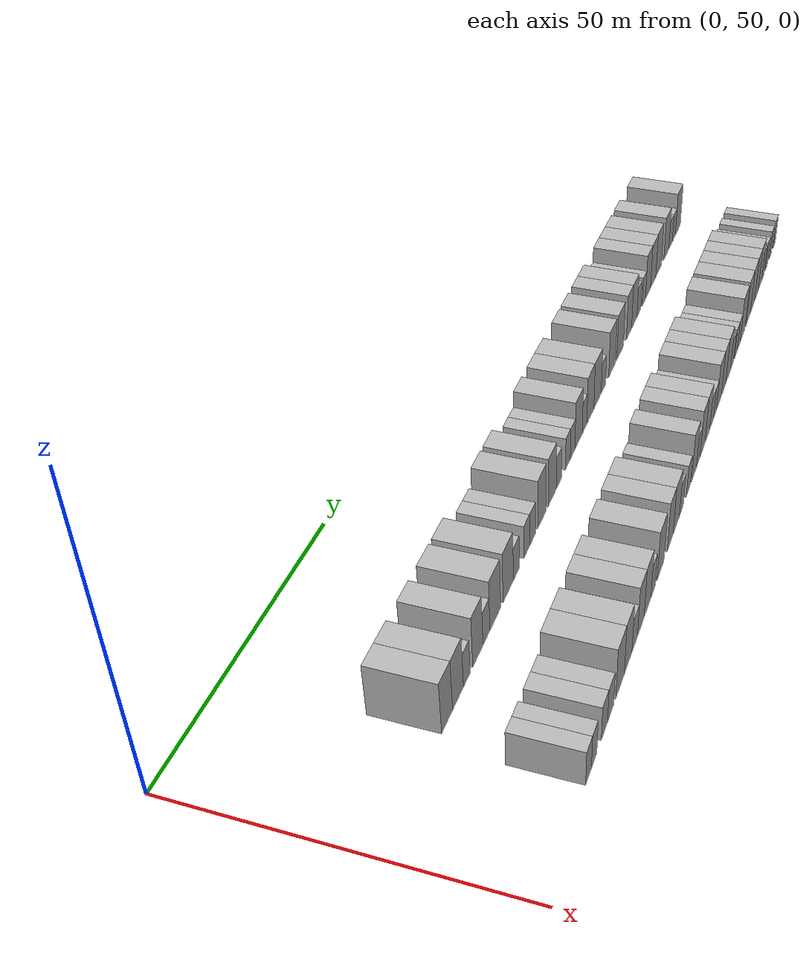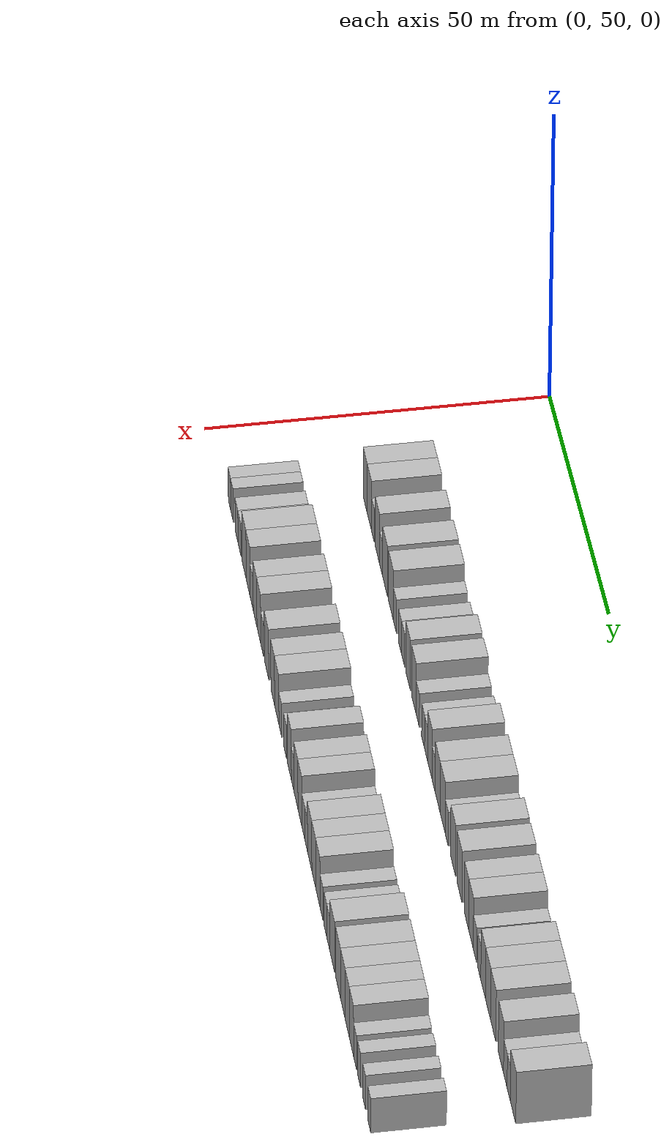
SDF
<sdf version="1.6">
 <world name="default">
  <model name="building_71">
   <static>1</static>
   <pose>25.0000 70.8489 0 0.000000 0.000000 0.000000</pose>
   <link name="link">
    <pose>0 0 4.50 0 0 0</pose>
    <collision name="collision"><geometry><box><size>10.0000 3.9220 9.0000</size></box></geometry></collision>
    <visual name="visual">
     <cast_shadows>0</cast_shadows>
     <geometry><box><size>10.0000 3.9220 9.0000</size></box></geometry>
     <material>
      <script>
       <uri>model://HANNAS_wall/materials/scripts</uri>
       <uri>model://HANNAS_wall/materials/textures</uri>
       <name>vrc/HANNAS_wall</name>
      </script>
     </material>
    </visual>
   </link>
  </model>
  <model name="building_72">
   <static>1</static>
   <pose>25.0000 74.7942 0 0.000000 0.000000 0.000000</pose>
   <link name="link">
    <pose>0 0 4.50 0 0 0</pose>
    <collision name="collision"><geometry><box><size>10.0000 3.9686 9.0000</size></box></geometry></collision>
    <visual name="visual">
     <cast_shadows>0</cast_shadows>
     <geometry><box><size>10.0000 3.9686 9.0000</size></box></geometry>
     <material>
      <script>
       <uri>model://HANNAS_wall/materials/scripts</uri>
       <uri>model://HANNAS_wall/materials/textures</uri>
       <name>vrc/HANNAS_wall</name>
      </script>
     </material>
    </visual>
   </link>
  </model>
  <model name="building_73">
   <static>1</static>
   <pose>25.0000 78.0298 0 0.000000 0.000000 0.000000</pose>
   <link name="link">
    <pose>0 0 3.00 0 0 0</pose>
    <collision name="collision"><geometry><box><size>10.0000 2.5027 6.0000</size></box></geometry></collision>
    <visual name="visual">
     <cast_shadows>0</cast_shadows>
     <geometry><box><size>10.0000 2.5027 6.0000</size></box></geometry>
     <material>
      <script>
       <uri>model://HANNAS_wall/materials/scripts</uri>
       <uri>model://HANNAS_wall/materials/textures</uri>
       <name>vrc/HANNAS_wall</name>
      </script>
     </material>
    </visual>
   </link>
  </model>
  <model name="building_74">
   <static>1</static>
   <pose>25.0000 82.2824 0 0.000000 0.000000 0.000000</pose>
   <link name="link">
    <pose>0 0 4.50 0 0 0</pose>
    <collision name="collision"><geometry><box><size>10.0000 4.0024 9.0000</size></box></geometry></collision>
    <visual name="visual">
     <cast_shadows>0</cast_shadows>
     <geometry><box><size>10.0000 4.0024 9.0000</size></box></geometry>
     <material>
      <script>
       <uri>model://HANNAS_wall/materials/scripts</uri>
       <uri>model://HANNAS_wall/materials/textures</uri>
       <name>vrc/HANNAS_wall</name>
      </script>
     </material>
    </visual>
   </link>
  </model>
  <model name="building_75">
   <static>1</static>
   <pose>25.0000 85.6878 0 0.000000 0.000000 0.000000</pose>
   <link name="link">
    <pose>0 0 3.00 0 0 0</pose>
    <collision name="collision"><geometry><box><size>10.0000 2.8086 6.0000</size></box></geometry></collision>
    <visual name="visual">
     <cast_shadows>0</cast_shadows>
     <geometry><box><size>10.0000 2.8086 6.0000</size></box></geometry>
     <material>
      <script>
       <uri>model://HANNAS_wall/materials/scripts</uri>
       <uri>model://HANNAS_wall/materials/textures</uri>
       <name>vrc/HANNAS_wall</name>
      </script>
     </material>
    </visual>
   </link>
  </model>
  <model name="building_76">
   <static>1</static>
   <pose>25.0000 89.3326 0 0.000000 0.000000 0.000000</pose>
   <link name="link">
    <pose>0 0 4.50 0 0 0</pose>
    <collision name="collision"><geometry><box><size>10.0000 4.4810 9.0000</size></box></geometry></collision>
    <visual name="visual">
     <cast_shadows>0</cast_shadows>
     <geometry><box><size>10.0000 4.4810 9.0000</size></box></geometry>
     <material>
      <script>
       <uri>model://HANNAS_wall/materials/scripts</uri>
       <uri>model://HANNAS_wall/materials/textures</uri>
       <name>vrc/HANNAS_wall</name>
      </script>
     </material>
    </visual>
   </link>
  </model>
  <model name="building_77">
   <static>1</static>
   <pose>25.0000 94.8214 0 0.000000 0.000000 0.000000</pose>
   <link name="link">
    <pose>0 0 4.50 0 0 0</pose>
    <collision name="collision"><geometry><box><size>10.0000 4.4966 9.0000</size></box></geometry></collision>
    <visual name="visual">
     <cast_shadows>0</cast_shadows>
     <geometry><box><size>10.0000 4.4966 9.0000</size></box></geometry>
     <material>
      <script>
       <uri>model://HANNAS_wall/materials/scripts</uri>
       <uri>model://HANNAS_wall/materials/textures</uri>
       <name>vrc/HANNAS_wall</name>
      </script>
     </material>
    </visual>
   </link>
  </model>
  <model name="building_78">
   <static>1</static>
   <pose>25.0000 98.4277 0 0.000000 0.000000 0.000000</pose>
   <link name="link">
    <pose>0 0 3.00 0 0 0</pose>
    <collision name="collision"><geometry><box><size>10.0000 2.7160 6.0000</size></box></geometry></collision>
    <visual name="visual">
     <cast_shadows>0</cast_shadows>
     <geometry><box><size>10.0000 2.7160 6.0000</size></box></geometry>
     <material>
      <script>
       <uri>model://HANNAS_wall/materials/scripts</uri>
       <uri>model://HANNAS_wall/materials/textures</uri>
       <name>vrc/HANNAS_wall</name>
      </script>
     </material>
    </visual>
   </link>
  </model>
  <model name="building_79">
   <static>1</static>
   <pose>25.0000 103.1300 0 0.000000 0.000000 0.000000</pose>
   <link name="link">
    <pose>0 0 3.00 0 0 0</pose>
    <collision name="collision"><geometry><box><size>10.0000 2.6886 6.0000</size></box></geometry></collision>
    <visual name="visual">
     <cast_shadows>0</cast_shadows>
     <geometry><box><size>10.0000 2.6886 6.0000</size></box></geometry>
     <material>
      <script>
       <uri>model://HANNAS_wall/materials/scripts</uri>
       <uri>model://HANNAS_wall/materials/textures</uri>
       <name>vrc/HANNAS_wall</name>
      </script>
     </material>
    </visual>
   </link>
  </model>
  <model name="building_80">
   <static>1</static>
   <pose>25.0000 105.8690 0 0.000000 0.000000 0.000000</pose>
   <link name="link">
    <pose>0 0 3.00 0 0 0</pose>
    <collision name="collision"><geometry><box><size>10.0000 2.7893 6.0000</size></box></geometry></collision>
    <visual name="visual">
     <cast_shadows>0</cast_shadows>
     <geometry><box><size>10.0000 2.7893 6.0000</size></box></geometry>
     <material>
      <script>
       <uri>model://HANNAS_wall/materials/scripts</uri>
       <uri>model://HANNAS_wall/materials/textures</uri>
       <name>vrc/HANNAS_wall</name>
      </script>
     </material>
    </visual>
   </link>
  </model>
  <model name="building_81">
   <static>1</static>
   <pose>25.0000 110.3339 0 0.000000 0.000000 0.000000</pose>
   <link name="link">
    <pose>0 0 4.50 0 0 0</pose>
    <collision name="collision"><geometry><box><size>10.0000 4.1406 9.0000</size></box></geometry></collision>
    <visual name="visual">
     <cast_shadows>0</cast_shadows>
     <geometry><box><size>10.0000 4.1406 9.0000</size></box></geometry>
     <material>
      <script>
       <uri>model://HANNAS_wall/materials/scripts</uri>
       <uri>model://HANNAS_wall/materials/textures</uri>
       <name>vrc/HANNAS_wall</name>
      </script>
     </material>
    </visual>
   </link>
  </model>
  <model name="building_82">
   <static>1</static>
   <pose>25.0000 115.4759 0 0.000000 0.000000 0.000000</pose>
   <link name="link">
    <pose>0 0 4.50 0 0 0</pose>
    <collision name="collision"><geometry><box><size>10.0000 4.1433 9.0000</size></box></geometry></collision>
    <visual name="visual">
     <cast_shadows>0</cast_shadows>
     <geometry><box><size>10.0000 4.1433 9.0000</size></box></geometry>
     <material>
      <script>
       <uri>model://HANNAS_wall/materials/scripts</uri>
       <uri>model://HANNAS_wall/materials/textures</uri>
       <name>vrc/HANNAS_wall</name>
      </script>
     </material>
    </visual>
   </link>
  </model>
  <model name="building_83">
   <static>1</static>
   <pose>25.0000 118.9860 0 0.000000 0.000000 0.000000</pose>
   <link name="link">
    <pose>0 0 3.00 0 0 0</pose>
    <collision name="collision"><geometry><box><size>10.0000 2.8769 6.0000</size></box></geometry></collision>
    <visual name="visual">
     <cast_shadows>0</cast_shadows>
     <geometry><box><size>10.0000 2.8769 6.0000</size></box></geometry>
     <material>
      <script>
       <uri>model://HANNAS_wall/materials/scripts</uri>
       <uri>model://HANNAS_wall/materials/textures</uri>
       <name>vrc/HANNAS_wall</name>
      </script>
     </material>
    </visual>
   </link>
  </model>
  <model name="building_84">
   <static>1</static>
   <pose>25.0000 123.7217 0 0.000000 0.000000 0.000000</pose>
   <link name="link">
    <pose>0 0 3.00 0 0 0</pose>
    <collision name="collision"><geometry><box><size>10.0000 2.5944 6.0000</size></box></geometry></collision>
    <visual name="visual">
     <cast_shadows>0</cast_shadows>
     <geometry><box><size>10.0000 2.5944 6.0000</size></box></geometry>
     <material>
      <script>
       <uri>model://HANNAS_wall/materials/scripts</uri>
       <uri>model://HANNAS_wall/materials/textures</uri>
       <name>vrc/HANNAS_wall</name>
      </script>
     </material>
    </visual>
   </link>
  </model>
  <model name="building_85">
   <static>1</static>
   <pose>25.0000 126.3316 0 0.000000 0.000000 0.000000</pose>
   <link name="link">
    <pose>0 0 3.00 0 0 0</pose>
    <collision name="collision"><geometry><box><size>10.0000 2.6255 6.0000</size></box></geometry></collision>
    <visual name="visual">
     <cast_shadows>0</cast_shadows>
     <geometry><box><size>10.0000 2.6255 6.0000</size></box></geometry>
     <material>
      <script>
       <uri>model://HANNAS_wall/materials/scripts</uri>
       <uri>model://HANNAS_wall/materials/textures</uri>
       <name>vrc/HANNAS_wall</name>
      </script>
     </material>
    </visual>
   </link>
  </model>
  <model name="building_86">
   <static>1</static>
   <pose>25.0000 129.7086 0 0.000000 0.000000 0.000000</pose>
   <link name="link">
    <pose>0 0 4.50 0 0 0</pose>
    <collision name="collision"><geometry><box><size>10.0000 4.1285 9.0000</size></box></geometry></collision>
    <visual name="visual">
     <cast_shadows>0</cast_shadows>
     <geometry><box><size>10.0000 4.1285 9.0000</size></box></geometry>
     <material>
      <script>
       <uri>model://HANNAS_wall/materials/scripts</uri>
       <uri>model://HANNAS_wall/materials/textures</uri>
       <name>vrc/HANNAS_wall</name>
      </script>
     </material>
    </visual>
   </link>
  </model>
  <model name="building_87">
   <static>1</static>
   <pose>25.0000 133.0878 0 0.000000 0.000000 0.000000</pose>
   <link name="link">
    <pose>0 0 3.00 0 0 0</pose>
    <collision name="collision"><geometry><box><size>10.0000 2.6299 6.0000</size></box></geometry></collision>
    <visual name="visual">
     <cast_shadows>0</cast_shadows>
     <geometry><box><size>10.0000 2.6299 6.0000</size></box></geometry>
     <material>
      <script>
       <uri>model://HANNAS_wall/materials/scripts</uri>
       <uri>model://HANNAS_wall/materials/textures</uri>
       <name>vrc/HANNAS_wall</name>
      </script>
     </material>
    </visual>
   </link>
  </model>
  <model name="building_88">
   <static>1</static>
   <pose>25.0000 136.4914 0 0.000000 0.000000 0.000000</pose>
   <link name="link">
    <pose>0 0 4.50 0 0 0</pose>
    <collision name="collision"><geometry><box><size>10.0000 4.1773 9.0000</size></box></geometry></collision>
    <visual name="visual">
     <cast_shadows>0</cast_shadows>
     <geometry><box><size>10.0000 4.1773 9.0000</size></box></geometry>
     <material>
      <script>
       <uri>model://HANNAS_wall/materials/scripts</uri>
       <uri>model://HANNAS_wall/materials/textures</uri>
       <name>vrc/HANNAS_wall</name>
      </script>
     </material>
    </visual>
   </link>
  </model>
  <model name="building_89">
   <static>1</static>
   <pose>25.0000 140.8173 0 0.000000 0.000000 0.000000</pose>
   <link name="link">
    <pose>0 0 4.50 0 0 0</pose>
    <collision name="collision"><geometry><box><size>10.0000 4.4745 9.0000</size></box></geometry></collision>
    <visual name="visual">
     <cast_shadows>0</cast_shadows>
     <geometry><box><size>10.0000 4.4745 9.0000</size></box></geometry>
     <material>
      <script>
       <uri>model://HANNAS_wall/materials/scripts</uri>
       <uri>model://HANNAS_wall/materials/textures</uri>
       <name>vrc/HANNAS_wall</name>
      </script>
     </material>
    </visual>
   </link>
  </model>
  <model name="building_90">
   <static>1</static>
   <pose>25.0000 144.4199 0 0.000000 0.000000 0.000000</pose>
   <link name="link">
    <pose>0 0 3.00 0 0 0</pose>
    <collision name="collision"><geometry><box><size>10.0000 2.7306 6.0000</size></box></geometry></collision>
    <visual name="visual">
     <cast_shadows>0</cast_shadows>
     <geometry><box><size>10.0000 2.7306 6.0000</size></box></geometry>
     <material>
      <script>
       <uri>model://HANNAS_wall/materials/scripts</uri>
       <uri>model://HANNAS_wall/materials/textures</uri>
       <name>vrc/HANNAS_wall</name>
      </script>
     </material>
    </visual>
   </link>
  </model>
  <model name="building_91">
   <static>1</static>
   <pose>25.0000 149.9409 0 0.000000 0.000000 0.000000</pose>
   <link name="link">
    <pose>0 0 4.50 0 0 0</pose>
    <collision name="collision"><geometry><box><size>10.0000 4.3115 9.0000</size></box></geometry></collision>
    <visual name="visual">
     <cast_shadows>0</cast_shadows>
     <geometry><box><size>10.0000 4.3115 9.0000</size></box></geometry>
     <material>
      <script>
       <uri>model://HANNAS_wall/materials/scripts</uri>
       <uri>model://HANNAS_wall/materials/textures</uri>
       <name>vrc/HANNAS_wall</name>
      </script>
     </material>
    </visual>
   </link>
  </model>
  <model name="building_92">
   <static>1</static>
   <pose>25.0000 155.3107 0 0.000000 0.000000 0.000000</pose>
   <link name="link">
    <pose>0 0 4.50 0 0 0</pose>
    <collision name="collision"><geometry><box><size>10.0000 4.4281 9.0000</size></box></geometry></collision>
    <visual name="visual">
     <cast_shadows>0</cast_shadows>
     <geometry><box><size>10.0000 4.4281 9.0000</size></box></geometry>
     <material>
      <script>
       <uri>model://HANNAS_wall/materials/scripts</uri>
       <uri>model://HANNAS_wall/materials/textures</uri>
       <name>vrc/HANNAS_wall</name>
      </script>
     </material>
    </visual>
   </link>
  </model>
  <model name="building_93">
   <static>1</static>
   <pose>25.0000 161.3803 0 0.000000 0.000000 0.000000</pose>
   <link name="link">
    <pose>0 0 4.50 0 0 0</pose>
    <collision name="collision"><geometry><box><size>10.0000 3.7112 9.0000</size></box></geometry></collision>
    <visual name="visual">
     <cast_shadows>0</cast_shadows>
     <geometry><box><size>10.0000 3.7112 9.0000</size></box></geometry>
     <material>
      <script>
       <uri>model://HANNAS_wall/materials/scripts</uri>
       <uri>model://HANNAS_wall/materials/textures</uri>
       <name>vrc/HANNAS_wall</name>
      </script>
     </material>
    </visual>
   </link>
  </model>
  <model name="building_94">
   <static>1</static>
   <pose>25.0000 165.1838 0 0.000000 0.000000 0.000000</pose>
   <link name="link">
    <pose>0 0 4.50 0 0 0</pose>
    <collision name="collision"><geometry><box><size>10.0000 3.8956 9.0000</size></box></geometry></collision>
    <visual name="visual">
     <cast_shadows>0</cast_shadows>
     <geometry><box><size>10.0000 3.8956 9.0000</size></box></geometry>
     <material>
      <script>
       <uri>model://HANNAS_wall/materials/scripts</uri>
       <uri>model://HANNAS_wall/materials/textures</uri>
       <name>vrc/HANNAS_wall</name>
      </script>
     </material>
    </visual>
   </link>
  </model>
  <model name="building_95">
   <static>1</static>
   <pose>25.0000 168.4774 0 0.000000 0.000000 0.000000</pose>
   <link name="link">
    <pose>0 0 3.00 0 0 0</pose>
    <collision name="collision"><geometry><box><size>10.0000 2.6917 6.0000</size></box></geometry></collision>
    <visual name="visual">
     <cast_shadows>0</cast_shadows>
     <geometry><box><size>10.0000 2.6917 6.0000</size></box></geometry>
     <material>
      <script>
       <uri>model://HANNAS_wall/materials/scripts</uri>
       <uri>model://HANNAS_wall/materials/textures</uri>
       <name>vrc/HANNAS_wall</name>
      </script>
     </material>
    </visual>
   </link>
  </model>
  <model name="building_96">
   <static>1</static>
   <pose>25.0000 172.1064 0 0.000000 0.000000 0.000000</pose>
   <link name="link">
    <pose>0 0 3.00 0 0 0</pose>
    <collision name="collision"><geometry><box><size>10.0000 2.5664 6.0000</size></box></geometry></collision>
    <visual name="visual">
     <cast_shadows>0</cast_shadows>
     <geometry><box><size>10.0000 2.5664 6.0000</size></box></geometry>
     <material>
      <script>
       <uri>model://HANNAS_wall/materials/scripts</uri>
       <uri>model://HANNAS_wall/materials/textures</uri>
       <name>vrc/HANNAS_wall</name>
      </script>
     </material>
    </visual>
   </link>
  </model>
  <model name="building_97">
   <static>1</static>
   <pose>25.0000 175.3060 0 0.000000 0.000000 0.000000</pose>
   <link name="link">
    <pose>0 0 4.50 0 0 0</pose>
    <collision name="collision"><geometry><box><size>10.0000 3.8326 9.0000</size></box></geometry></collision>
    <visual name="visual">
     <cast_shadows>0</cast_shadows>
     <geometry><box><size>10.0000 3.8326 9.0000</size></box></geometry>
     <material>
      <script>
       <uri>model://HANNAS_wall/materials/scripts</uri>
       <uri>model://HANNAS_wall/materials/textures</uri>
       <name>vrc/HANNAS_wall</name>
      </script>
     </material>
    </visual>
   </link>
  </model>
  <model name="building_98">
   <static>1</static>
   <pose>25.0000 179.3122 0 0.000000 0.000000 0.000000</pose>
   <link name="link">
    <pose>0 0 4.50 0 0 0</pose>
    <collision name="collision"><geometry><box><size>10.0000 4.1798 9.0000</size></box></geometry></collision>
    <visual name="visual">
     <cast_shadows>0</cast_shadows>
     <geometry><box><size>10.0000 4.1798 9.0000</size></box></geometry>
     <material>
      <script>
       <uri>model://HANNAS_wall/materials/scripts</uri>
       <uri>model://HANNAS_wall/materials/textures</uri>
       <name>vrc/HANNAS_wall</name>
      </script>
     </material>
    </visual>
   </link>
  </model>
  <model name="building_99">
   <static>1</static>
   <pose>25.0000 183.6263 0 0.000000 0.000000 0.000000</pose>
   <link name="link">
    <pose>0 0 4.50 0 0 0</pose>
    <collision name="collision"><geometry><box><size>10.0000 4.4484 9.0000</size></box></geometry></collision>
    <visual name="visual">
     <cast_shadows>0</cast_shadows>
     <geometry><box><size>10.0000 4.4484 9.0000</size></box></geometry>
     <material>
      <script>
       <uri>model://HANNAS_wall/materials/scripts</uri>
       <uri>model://HANNAS_wall/materials/textures</uri>
       <name>vrc/HANNAS_wall</name>
      </script>
     </material>
    </visual>
   </link>
  </model>
  <model name="building_100">
   <static>1</static>
   <pose>25.0000 189.9874 0 0.000000 0.000000 0.000000</pose>
   <link name="link">
    <pose>0 0 4.50 0 0 0</pose>
    <collision name="collision"><geometry><box><size>10.0000 4.2738 9.0000</size></box></geometry></collision>
    <visual name="visual">
     <cast_shadows>0</cast_shadows>
     <geometry><box><size>10.0000 4.2738 9.0000</size></box></geometry>
     <material>
      <script>
       <uri>model://HANNAS_wall/materials/scripts</uri>
       <uri>model://HANNAS_wall/materials/textures</uri>
       <name>vrc/HANNAS_wall</name>
      </script>
     </material>
    </visual>
   </link>
  </model>
  <model name="building_101">
   <static>1</static>
   <pose>25.0000 193.5813 0 0.000000 0.000000 0.000000</pose>
   <link name="link">
    <pose>0 0 3.00 0 0 0</pose>
    <collision name="collision"><geometry><box><size>10.0000 2.9140 6.0000</size></box></geometry></collision>
    <visual name="visual">
     <cast_shadows>0</cast_shadows>
     <geometry><box><size>10.0000 2.9140 6.0000</size></box></geometry>
     <material>
      <script>
       <uri>model://HANNAS_wall/materials/scripts</uri>
       <uri>model://HANNAS_wall/materials/textures</uri>
       <name>vrc/HANNAS_wall</name>
      </script>
     </material>
    </visual>
   </link>
  </model>
  <model name="building_102">
   <static>1</static>
   <pose>25.0000 196.3520 0 0.000000 0.000000 0.000000</pose>
   <link name="link">
    <pose>0 0 3.00 0 0 0</pose>
    <collision name="collision"><geometry><box><size>10.0000 2.6275 6.0000</size></box></geometry></collision>
    <visual name="visual">
     <cast_shadows>0</cast_shadows>
     <geometry><box><size>10.0000 2.6275 6.0000</size></box></geometry>
     <material>
      <script>
       <uri>model://HANNAS_wall/materials/scripts</uri>
       <uri>model://HANNAS_wall/materials/textures</uri>
       <name>vrc/HANNAS_wall</name>
      </script>
     </material>
    </visual>
   </link>
  </model>
  <model name="building_103">
   <static>1</static>
   <pose>25.0000 199.8853 0 0.000000 0.000000 0.000000</pose>
   <link name="link">
    <pose>0 0 4.50 0 0 0</pose>
    <collision name="collision"><geometry><box><size>10.0000 4.4392 9.0000</size></box></geometry></collision>
    <visual name="visual">
     <cast_shadows>0</cast_shadows>
     <geometry><box><size>10.0000 4.4392 9.0000</size></box></geometry>
     <material>
      <script>
       <uri>model://HANNAS_wall/materials/scripts</uri>
       <uri>model://HANNAS_wall/materials/textures</uri>
       <name>vrc/HANNAS_wall</name>
      </script>
     </material>
    </visual>
   </link>
  </model>
  <model name="building_172">
   <static>1</static>
   <pose>44.0000 68.0549 0 0.000000 0.000000 0.000000</pose>
   <link name="link">
    <pose>0 0 3.00 0 0 0</pose>
    <collision name="collision"><geometry><box><size>10.0000 2.5602 6.0000</size></box></geometry></collision>
    <visual name="visual">
     <cast_shadows>0</cast_shadows>
     <geometry><box><size>10.0000 2.5602 6.0000</size></box></geometry>
     <material>
      <script>
       <uri>model://HANNAS_wall/materials/scripts</uri>
       <uri>model://HANNAS_wall/materials/textures</uri>
       <name>vrc/HANNAS_wall</name>
      </script>
     </material>
    </visual>
   </link>
  </model>
  <model name="building_173">
   <static>1</static>
   <pose>44.0000 70.5600 0 0.000000 0.000000 0.000000</pose>
   <link name="link">
    <pose>0 0 3.00 0 0 0</pose>
    <collision name="collision"><geometry><box><size>10.0000 2.4499 6.0000</size></box></geometry></collision>
    <visual name="visual">
     <cast_shadows>0</cast_shadows>
     <geometry><box><size>10.0000 2.4499 6.0000</size></box></geometry>
     <material>
      <script>
       <uri>model://HANNAS_wall/materials/scripts</uri>
       <uri>model://HANNAS_wall/materials/textures</uri>
       <name>vrc/HANNAS_wall</name>
      </script>
     </material>
    </visual>
   </link>
  </model>
  <model name="building_174">
   <static>1</static>
   <pose>44.0000 75.2545 0 0.000000 0.000000 0.000000</pose>
   <link name="link">
    <pose>0 0 3.00 0 0 0</pose>
    <collision name="collision"><geometry><box><size>10.0000 2.9391 6.0000</size></box></geometry></collision>
    <visual name="visual">
     <cast_shadows>0</cast_shadows>
     <geometry><box><size>10.0000 2.9391 6.0000</size></box></geometry>
     <material>
      <script>
       <uri>model://HANNAS_wall/materials/scripts</uri>
       <uri>model://HANNAS_wall/materials/textures</uri>
       <name>vrc/HANNAS_wall</name>
      </script>
     </material>
    </visual>
   </link>
  </model>
  <model name="building_175">
   <static>1</static>
   <pose>44.0000 78.2024 0 0.000000 0.000000 0.000000</pose>
   <link name="link">
    <pose>0 0 3.00 0 0 0</pose>
    <collision name="collision"><geometry><box><size>10.0000 2.9567 6.0000</size></box></geometry></collision>
    <visual name="visual">
     <cast_shadows>0</cast_shadows>
     <geometry><box><size>10.0000 2.9567 6.0000</size></box></geometry>
     <material>
      <script>
       <uri>model://HANNAS_wall/materials/scripts</uri>
       <uri>model://HANNAS_wall/materials/textures</uri>
       <name>vrc/HANNAS_wall</name>
      </script>
     </material>
    </visual>
   </link>
  </model>
  <model name="building_176">
   <static>1</static>
   <pose>44.0000 82.8289 0 0.000000 0.000000 0.000000</pose>
   <link name="link">
    <pose>0 0 4.50 0 0 0</pose>
    <collision name="collision"><geometry><box><size>10.0000 4.2963 9.0000</size></box></geometry></collision>
    <visual name="visual">
     <cast_shadows>0</cast_shadows>
     <geometry><box><size>10.0000 4.2963 9.0000</size></box></geometry>
     <material>
      <script>
       <uri>model://HANNAS_wall/materials/scripts</uri>
       <uri>model://HANNAS_wall/materials/textures</uri>
       <name>vrc/HANNAS_wall</name>
      </script>
     </material>
    </visual>
   </link>
  </model>
  <model name="building_177">
   <static>1</static>
   <pose>44.0000 86.9494 0 0.000000 0.000000 0.000000</pose>
   <link name="link">
    <pose>0 0 4.50 0 0 0</pose>
    <collision name="collision"><geometry><box><size>10.0000 3.9448 9.0000</size></box></geometry></collision>
    <visual name="visual">
     <cast_shadows>0</cast_shadows>
     <geometry><box><size>10.0000 3.9448 9.0000</size></box></geometry>
     <material>
      <script>
       <uri>model://HANNAS_wall/materials/scripts</uri>
       <uri>model://HANNAS_wall/materials/textures</uri>
       <name>vrc/HANNAS_wall</name>
      </script>
     </material>
    </visual>
   </link>
  </model>
  <model name="building_178">
   <static>1</static>
   <pose>44.0000 90.4048 0 0.000000 0.000000 0.000000</pose>
   <link name="link">
    <pose>0 0 3.00 0 0 0</pose>
    <collision name="collision"><geometry><box><size>10.0000 2.9660 6.0000</size></box></geometry></collision>
    <visual name="visual">
     <cast_shadows>0</cast_shadows>
     <geometry><box><size>10.0000 2.9660 6.0000</size></box></geometry>
     <material>
      <script>
       <uri>model://HANNAS_wall/materials/scripts</uri>
       <uri>model://HANNAS_wall/materials/textures</uri>
       <name>vrc/HANNAS_wall</name>
      </script>
     </material>
    </visual>
   </link>
  </model>
  <model name="building_179">
   <static>1</static>
   <pose>44.0000 93.7168 0 0.000000 0.000000 0.000000</pose>
   <link name="link">
    <pose>0 0 4.50 0 0 0</pose>
    <collision name="collision"><geometry><box><size>10.0000 3.6580 9.0000</size></box></geometry></collision>
    <visual name="visual">
     <cast_shadows>0</cast_shadows>
     <geometry><box><size>10.0000 3.6580 9.0000</size></box></geometry>
     <material>
      <script>
       <uri>model://HANNAS_wall/materials/scripts</uri>
       <uri>model://HANNAS_wall/materials/textures</uri>
       <name>vrc/HANNAS_wall</name>
      </script>
     </material>
    </visual>
   </link>
  </model>
  <model name="building_180">
   <static>1</static>
   <pose>44.0000 97.4952 0 0.000000 0.000000 0.000000</pose>
   <link name="link">
    <pose>0 0 4.50 0 0 0</pose>
    <collision name="collision"><geometry><box><size>10.0000 3.8988 9.0000</size></box></geometry></collision>
    <visual name="visual">
     <cast_shadows>0</cast_shadows>
     <geometry><box><size>10.0000 3.8988 9.0000</size></box></geometry>
     <material>
      <script>
       <uri>model://HANNAS_wall/materials/scripts</uri>
       <uri>model://HANNAS_wall/materials/textures</uri>
       <name>vrc/HANNAS_wall</name>
      </script>
     </material>
    </visual>
   </link>
  </model>
  <model name="building_181">
   <static>1</static>
   <pose>44.0000 100.7286 0 0.000000 0.000000 0.000000</pose>
   <link name="link">
    <pose>0 0 3.00 0 0 0</pose>
    <collision name="collision"><geometry><box><size>10.0000 2.5680 6.0000</size></box></geometry></collision>
    <visual name="visual">
     <cast_shadows>0</cast_shadows>
     <geometry><box><size>10.0000 2.5680 6.0000</size></box></geometry>
     <material>
      <script>
       <uri>model://HANNAS_wall/materials/scripts</uri>
       <uri>model://HANNAS_wall/materials/textures</uri>
       <name>vrc/HANNAS_wall</name>
      </script>
     </material>
    </visual>
   </link>
  </model>
  <model name="building_182">
   <static>1</static>
   <pose>44.0000 105.1125 0 0.000000 0.000000 0.000000</pose>
   <link name="link">
    <pose>0 0 4.50 0 0 0</pose>
    <collision name="collision"><geometry><box><size>10.0000 4.1998 9.0000</size></box></geometry></collision>
    <visual name="visual">
     <cast_shadows>0</cast_shadows>
     <geometry><box><size>10.0000 4.1998 9.0000</size></box></geometry>
     <material>
      <script>
       <uri>model://HANNAS_wall/materials/scripts</uri>
       <uri>model://HANNAS_wall/materials/textures</uri>
       <name>vrc/HANNAS_wall</name>
      </script>
     </material>
    </visual>
   </link>
  </model>
  <model name="building_183">
   <static>1</static>
   <pose>44.0000 111.0483 0 0.000000 0.000000 0.000000</pose>
   <link name="link">
    <pose>0 0 4.50 0 0 0</pose>
    <collision name="collision"><geometry><box><size>10.0000 3.6718 9.0000</size></box></geometry></collision>
    <visual name="visual">
     <cast_shadows>0</cast_shadows>
     <geometry><box><size>10.0000 3.6718 9.0000</size></box></geometry>
     <material>
      <script>
       <uri>model://HANNAS_wall/materials/scripts</uri>
       <uri>model://HANNAS_wall/materials/textures</uri>
       <name>vrc/HANNAS_wall</name>
      </script>
     </material>
    </visual>
   </link>
  </model>
  <model name="building_184">
   <static>1</static>
   <pose>44.0000 114.9545 0 0.000000 0.000000 0.000000</pose>
   <link name="link">
    <pose>0 0 4.50 0 0 0</pose>
    <collision name="collision"><geometry><box><size>10.0000 4.1406 9.0000</size></box></geometry></collision>
    <visual name="visual">
     <cast_shadows>0</cast_shadows>
     <geometry><box><size>10.0000 4.1406 9.0000</size></box></geometry>
     <material>
      <script>
       <uri>model://HANNAS_wall/materials/scripts</uri>
       <uri>model://HANNAS_wall/materials/textures</uri>
       <name>vrc/HANNAS_wall</name>
      </script>
     </material>
    </visual>
   </link>
  </model>
  <model name="building_185">
   <static>1</static>
   <pose>44.0000 118.3417 0 0.000000 0.000000 0.000000</pose>
   <link name="link">
    <pose>0 0 3.00 0 0 0</pose>
    <collision name="collision"><geometry><box><size>10.0000 2.6338 6.0000</size></box></geometry></collision>
    <visual name="visual">
     <cast_shadows>0</cast_shadows>
     <geometry><box><size>10.0000 2.6338 6.0000</size></box></geometry>
     <material>
      <script>
       <uri>model://HANNAS_wall/materials/scripts</uri>
       <uri>model://HANNAS_wall/materials/textures</uri>
       <name>vrc/HANNAS_wall</name>
      </script>
     </material>
    </visual>
   </link>
  </model>
  <model name="building_186">
   <static>1</static>
   <pose>44.0000 122.9760 0 0.000000 0.000000 0.000000</pose>
   <link name="link">
    <pose>0 0 3.00 0 0 0</pose>
    <collision name="collision"><geometry><box><size>10.0000 2.6349 6.0000</size></box></geometry></collision>
    <visual name="visual">
     <cast_shadows>0</cast_shadows>
     <geometry><box><size>10.0000 2.6349 6.0000</size></box></geometry>
     <material>
      <script>
       <uri>model://HANNAS_wall/materials/scripts</uri>
       <uri>model://HANNAS_wall/materials/textures</uri>
       <name>vrc/HANNAS_wall</name>
      </script>
     </material>
    </visual>
   </link>
  </model>
  <model name="building_187">
   <static>1</static>
   <pose>44.0000 127.0959 0 0.000000 0.000000 0.000000</pose>
   <link name="link">
    <pose>0 0 4.50 0 0 0</pose>
    <collision name="collision"><geometry><box><size>10.0000 3.6048 9.0000</size></box></geometry></collision>
    <visual name="visual">
     <cast_shadows>0</cast_shadows>
     <geometry><box><size>10.0000 3.6048 9.0000</size></box></geometry>
     <material>
      <script>
       <uri>model://HANNAS_wall/materials/scripts</uri>
       <uri>model://HANNAS_wall/materials/textures</uri>
       <name>vrc/HANNAS_wall</name>
      </script>
     </material>
    </visual>
   </link>
  </model>
  <model name="building_188">
   <static>1</static>
   <pose>44.0000 130.1757 0 0.000000 0.000000 0.000000</pose>
   <link name="link">
    <pose>0 0 3.00 0 0 0</pose>
    <collision name="collision"><geometry><box><size>10.0000 2.5547 6.0000</size></box></geometry></collision>
    <visual name="visual">
     <cast_shadows>0</cast_shadows>
     <geometry><box><size>10.0000 2.5547 6.0000</size></box></geometry>
     <material>
      <script>
       <uri>model://HANNAS_wall/materials/scripts</uri>
       <uri>model://HANNAS_wall/materials/textures</uri>
       <name>vrc/HANNAS_wall</name>
      </script>
     </material>
    </visual>
   </link>
  </model>
  <model name="building_189">
   <static>1</static>
   <pose>44.0000 133.3133 0 0.000000 0.000000 0.000000</pose>
   <link name="link">
    <pose>0 0 4.50 0 0 0</pose>
    <collision name="collision"><geometry><box><size>10.0000 3.7205 9.0000</size></box></geometry></collision>
    <visual name="visual">
     <cast_shadows>0</cast_shadows>
     <geometry><box><size>10.0000 3.7205 9.0000</size></box></geometry>
     <material>
      <script>
       <uri>model://HANNAS_wall/materials/scripts</uri>
       <uri>model://HANNAS_wall/materials/textures</uri>
       <name>vrc/HANNAS_wall</name>
      </script>
     </material>
    </visual>
   </link>
  </model>
  <model name="building_190">
   <static>1</static>
   <pose>44.0000 137.0018 0 0.000000 0.000000 0.000000</pose>
   <link name="link">
    <pose>0 0 4.50 0 0 0</pose>
    <collision name="collision"><geometry><box><size>10.0000 3.6566 9.0000</size></box></geometry></collision>
    <visual name="visual">
     <cast_shadows>0</cast_shadows>
     <geometry><box><size>10.0000 3.6566 9.0000</size></box></geometry>
     <material>
      <script>
       <uri>model://HANNAS_wall/materials/scripts</uri>
       <uri>model://HANNAS_wall/materials/textures</uri>
       <name>vrc/HANNAS_wall</name>
      </script>
     </material>
    </visual>
   </link>
  </model>
  <model name="building_191">
   <static>1</static>
   <pose>44.0000 140.2849 0 0.000000 0.000000 0.000000</pose>
   <link name="link">
    <pose>0 0 3.00 0 0 0</pose>
    <collision name="collision"><geometry><box><size>10.0000 2.9095 6.0000</size></box></geometry></collision>
    <visual name="visual">
     <cast_shadows>0</cast_shadows>
     <geometry><box><size>10.0000 2.9095 6.0000</size></box></geometry>
     <material>
      <script>
       <uri>model://HANNAS_wall/materials/scripts</uri>
       <uri>model://HANNAS_wall/materials/textures</uri>
       <name>vrc/HANNAS_wall</name>
      </script>
     </material>
    </visual>
   </link>
  </model>
  <model name="building_192">
   <static>1</static>
   <pose>44.0000 142.9453 0 0.000000 0.000000 0.000000</pose>
   <link name="link">
    <pose>0 0 3.00 0 0 0</pose>
    <collision name="collision"><geometry><box><size>10.0000 2.4113 6.0000</size></box></geometry></collision>
    <visual name="visual">
     <cast_shadows>0</cast_shadows>
     <geometry><box><size>10.0000 2.4113 6.0000</size></box></geometry>
     <material>
      <script>
       <uri>model://HANNAS_wall/materials/scripts</uri>
       <uri>model://HANNAS_wall/materials/textures</uri>
       <name>vrc/HANNAS_wall</name>
      </script>
     </material>
    </visual>
   </link>
  </model>
  <model name="building_193">
   <static>1</static>
   <pose>44.0000 146.1374 0 0.000000 0.000000 0.000000</pose>
   <link name="link">
    <pose>0 0 4.50 0 0 0</pose>
    <collision name="collision"><geometry><box><size>10.0000 3.9729 9.0000</size></box></geometry></collision>
    <visual name="visual">
     <cast_shadows>0</cast_shadows>
     <geometry><box><size>10.0000 3.9729 9.0000</size></box></geometry>
     <material>
      <script>
       <uri>model://HANNAS_wall/materials/scripts</uri>
       <uri>model://HANNAS_wall/materials/textures</uri>
       <name>vrc/HANNAS_wall</name>
      </script>
     </material>
    </visual>
   </link>
  </model>
  <model name="building_194">
   <static>1</static>
   <pose>44.0000 149.9279 0 0.000000 0.000000 0.000000</pose>
   <link name="link">
    <pose>0 0 4.50 0 0 0</pose>
    <collision name="collision"><geometry><box><size>10.0000 3.6079 9.0000</size></box></geometry></collision>
    <visual name="visual">
     <cast_shadows>0</cast_shadows>
     <geometry><box><size>10.0000 3.6079 9.0000</size></box></geometry>
     <material>
      <script>
       <uri>model://HANNAS_wall/materials/scripts</uri>
       <uri>model://HANNAS_wall/materials/textures</uri>
       <name>vrc/HANNAS_wall</name>
      </script>
     </material>
    </visual>
   </link>
  </model>
  <model name="building_195">
   <static>1</static>
   <pose>44.0000 153.7305 0 0.000000 0.000000 0.000000</pose>
   <link name="link">
    <pose>0 0 4.50 0 0 0</pose>
    <collision name="collision"><geometry><box><size>10.0000 3.9974 9.0000</size></box></geometry></collision>
    <visual name="visual">
     <cast_shadows>0</cast_shadows>
     <geometry><box><size>10.0000 3.9974 9.0000</size></box></geometry>
     <material>
      <script>
       <uri>model://HANNAS_wall/materials/scripts</uri>
       <uri>model://HANNAS_wall/materials/textures</uri>
       <name>vrc/HANNAS_wall</name>
      </script>
     </material>
    </visual>
   </link>
  </model>
  <model name="building_196">
   <static>1</static>
   <pose>44.0000 157.0918 0 0.000000 0.000000 0.000000</pose>
   <link name="link">
    <pose>0 0 3.00 0 0 0</pose>
    <collision name="collision"><geometry><box><size>10.0000 2.7251 6.0000</size></box></geometry></collision>
    <visual name="visual">
     <cast_shadows>0</cast_shadows>
     <geometry><box><size>10.0000 2.7251 6.0000</size></box></geometry>
     <material>
      <script>
       <uri>model://HANNAS_wall/materials/scripts</uri>
       <uri>model://HANNAS_wall/materials/textures</uri>
       <name>vrc/HANNAS_wall</name>
      </script>
     </material>
    </visual>
   </link>
  </model>
  <model name="building_197">
   <static>1</static>
   <pose>44.0000 160.6886 0 0.000000 0.000000 0.000000</pose>
   <link name="link">
    <pose>0 0 3.00 0 0 0</pose>
    <collision name="collision"><geometry><box><size>10.0000 2.4683 6.0000</size></box></geometry></collision>
    <visual name="visual">
     <cast_shadows>0</cast_shadows>
     <geometry><box><size>10.0000 2.4683 6.0000</size></box></geometry>
     <material>
      <script>
       <uri>model://HANNAS_wall/materials/scripts</uri>
       <uri>model://HANNAS_wall/materials/textures</uri>
       <name>vrc/HANNAS_wall</name>
      </script>
     </material>
    </visual>
   </link>
  </model>
  <model name="building_198">
   <static>1</static>
   <pose>44.0000 163.2492 0 0.000000 0.000000 0.000000</pose>
   <link name="link">
    <pose>0 0 3.00 0 0 0</pose>
    <collision name="collision"><geometry><box><size>10.0000 2.6529 6.0000</size></box></geometry></collision>
    <visual name="visual">
     <cast_shadows>0</cast_shadows>
     <geometry><box><size>10.0000 2.6529 6.0000</size></box></geometry>
     <material>
      <script>
       <uri>model://HANNAS_wall/materials/scripts</uri>
       <uri>model://HANNAS_wall/materials/textures</uri>
       <name>vrc/HANNAS_wall</name>
      </script>
     </material>
    </visual>
   </link>
  </model>
  <model name="building_199">
   <static>1</static>
   <pose>44.0000 166.8255 0 0.000000 0.000000 0.000000</pose>
   <link name="link">
    <pose>0 0 4.50 0 0 0</pose>
    <collision name="collision"><geometry><box><size>10.0000 4.4999 9.0000</size></box></geometry></collision>
    <visual name="visual">
     <cast_shadows>0</cast_shadows>
     <geometry><box><size>10.0000 4.4999 9.0000</size></box></geometry>
     <material>
      <script>
       <uri>model://HANNAS_wall/materials/scripts</uri>
       <uri>model://HANNAS_wall/materials/textures</uri>
       <name>vrc/HANNAS_wall</name>
      </script>
     </material>
    </visual>
   </link>
  </model>
  <model name="building_200">
   <static>1</static>
   <pose>44.0000 172.2360 0 0.000000 0.000000 0.000000</pose>
   <link name="link">
    <pose>0 0 4.50 0 0 0</pose>
    <collision name="collision"><geometry><box><size>10.0000 4.3210 9.0000</size></box></geometry></collision>
    <visual name="visual">
     <cast_shadows>0</cast_shadows>
     <geometry><box><size>10.0000 4.3210 9.0000</size></box></geometry>
     <material>
      <script>
       <uri>model://HANNAS_wall/materials/scripts</uri>
       <uri>model://HANNAS_wall/materials/textures</uri>
       <name>vrc/HANNAS_wall</name>
      </script>
     </material>
    </visual>
   </link>
  </model>
  <model name="building_201">
   <static>1</static>
   <pose>44.0000 176.4221 0 0.000000 0.000000 0.000000</pose>
   <link name="link">
    <pose>0 0 4.50 0 0 0</pose>
    <collision name="collision"><geometry><box><size>10.0000 4.0513 9.0000</size></box></geometry></collision>
    <visual name="visual">
     <cast_shadows>0</cast_shadows>
     <geometry><box><size>10.0000 4.0513 9.0000</size></box></geometry>
     <material>
      <script>
       <uri>model://HANNAS_wall/materials/scripts</uri>
       <uri>model://HANNAS_wall/materials/textures</uri>
       <name>vrc/HANNAS_wall</name>
      </script>
     </material>
    </visual>
   </link>
  </model>
  <model name="building_202">
   <static>1</static>
   <pose>44.0000 180.2943 0 0.000000 0.000000 0.000000</pose>
   <link name="link">
    <pose>0 0 4.50 0 0 0</pose>
    <collision name="collision"><geometry><box><size>10.0000 3.6931 9.0000</size></box></geometry></collision>
    <visual name="visual">
     <cast_shadows>0</cast_shadows>
     <geometry><box><size>10.0000 3.6931 9.0000</size></box></geometry>
     <material>
      <script>
       <uri>model://HANNAS_wall/materials/scripts</uri>
       <uri>model://HANNAS_wall/materials/textures</uri>
       <name>vrc/HANNAS_wall</name>
      </script>
     </material>
    </visual>
   </link>
  </model>
  <model name="building_203">
   <static>1</static>
   <pose>44.0000 184.0589 0 0.000000 0.000000 0.000000</pose>
   <link name="link">
    <pose>0 0 4.50 0 0 0</pose>
    <collision name="collision"><geometry><box><size>10.0000 3.8360 9.0000</size></box></geometry></collision>
    <visual name="visual">
     <cast_shadows>0</cast_shadows>
     <geometry><box><size>10.0000 3.8360 9.0000</size></box></geometry>
     <material>
      <script>
       <uri>model://HANNAS_wall/materials/scripts</uri>
       <uri>model://HANNAS_wall/materials/textures</uri>
       <name>vrc/HANNAS_wall</name>
      </script>
     </material>
    </visual>
   </link>
  </model>
  <model name="building_204">
   <static>1</static>
   <pose>44.0000 187.2898 0 0.000000 0.000000 0.000000</pose>
   <link name="link">
    <pose>0 0 3.00 0 0 0</pose>
    <collision name="collision"><geometry><box><size>10.0000 2.6258 6.0000</size></box></geometry></collision>
    <visual name="visual">
     <cast_shadows>0</cast_shadows>
     <geometry><box><size>10.0000 2.6258 6.0000</size></box></geometry>
     <material>
      <script>
       <uri>model://HANNAS_wall/materials/scripts</uri>
       <uri>model://HANNAS_wall/materials/textures</uri>
       <name>vrc/HANNAS_wall</name>
      </script>
     </material>
    </visual>
   </link>
  </model>
  <model name="building_205">
   <static>1</static>
   <pose>44.0000 190.8327 0 0.000000 0.000000 0.000000</pose>
   <link name="link">
    <pose>0 0 3.00 0 0 0</pose>
    <collision name="collision"><geometry><box><size>10.0000 2.4599 6.0000</size></box></geometry></collision>
    <visual name="visual">
     <cast_shadows>0</cast_shadows>
     <geometry><box><size>10.0000 2.4599 6.0000</size></box></geometry>
     <material>
      <script>
       <uri>model://HANNAS_wall/materials/scripts</uri>
       <uri>model://HANNAS_wall/materials/textures</uri>
       <name>vrc/HANNAS_wall</name>
      </script>
     </material>
    </visual>
   </link>
  </model>
  <model name="building_206">
   <static>1</static>
   <pose>44.0000 195.2700 0 0.000000 0.000000 0.000000</pose>
   <link name="link">
    <pose>0 0 3.00 0 0 0</pose>
    <collision name="collision"><geometry><box><size>10.0000 2.4147 6.0000</size></box></geometry></collision>
    <visual name="visual">
     <cast_shadows>0</cast_shadows>
     <geometry><box><size>10.0000 2.4147 6.0000</size></box></geometry>
     <material>
      <script>
       <uri>model://HANNAS_wall/materials/scripts</uri>
       <uri>model://HANNAS_wall/materials/textures</uri>
       <name>vrc/HANNAS_wall</name>
      </script>
     </material>
    </visual>
   </link>
  </model>
  <model name="building_207">
   <static>1</static>
   <pose>44.0000 199.7385 0 0.000000 0.000000 0.000000</pose>
   <link name="link">
    <pose>0 0 3.00 0 0 0</pose>
    <collision name="collision"><geometry><box><size>10.0000 2.5224 6.0000</size></box></geometry></collision>
    <visual name="visual">
     <cast_shadows>0</cast_shadows>
     <geometry><box><size>10.0000 2.5224 6.0000</size></box></geometry>
     <material>
      <script>
       <uri>model://HANNAS_wall/materials/scripts</uri>
       <uri>model://HANNAS_wall/materials/textures</uri>
       <name>vrc/HANNAS_wall</name>
      </script>
     </material>
    </visual>
   </link>
  </model>
 </world>
</sdf>
